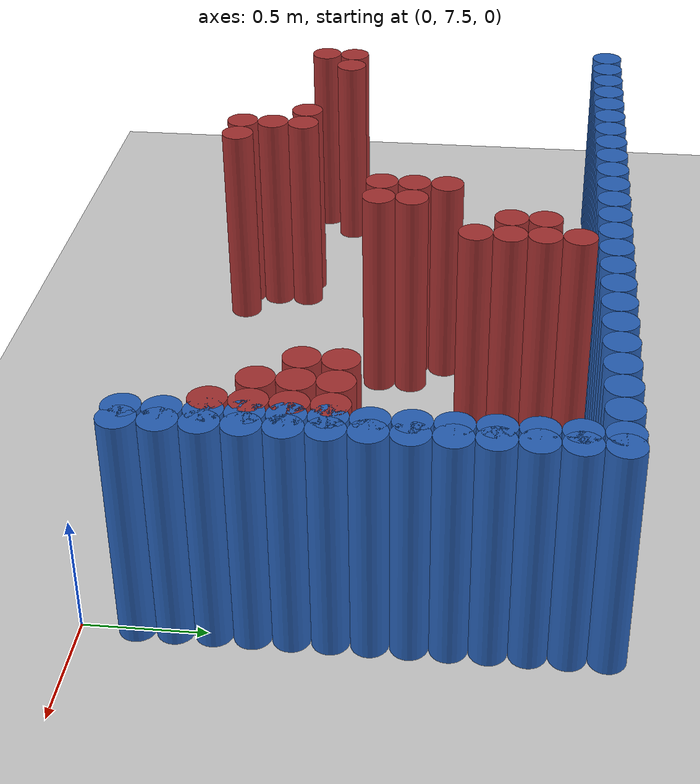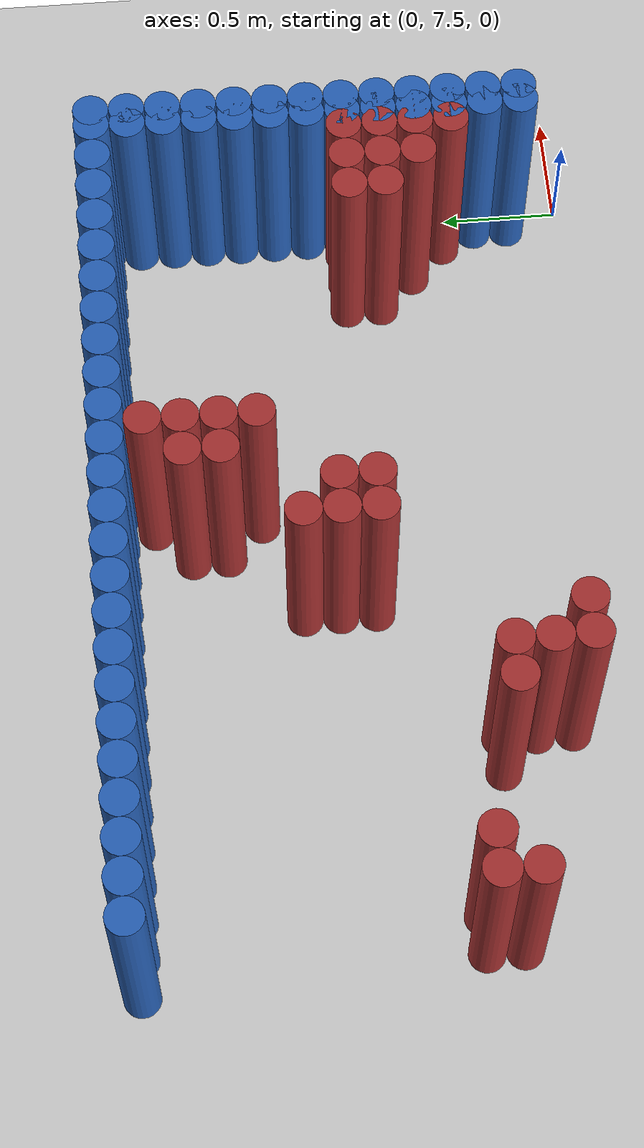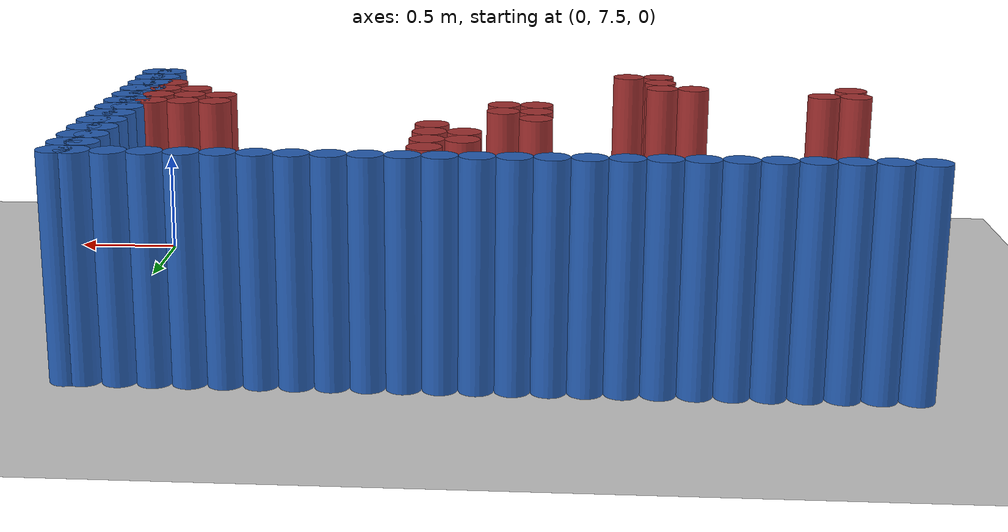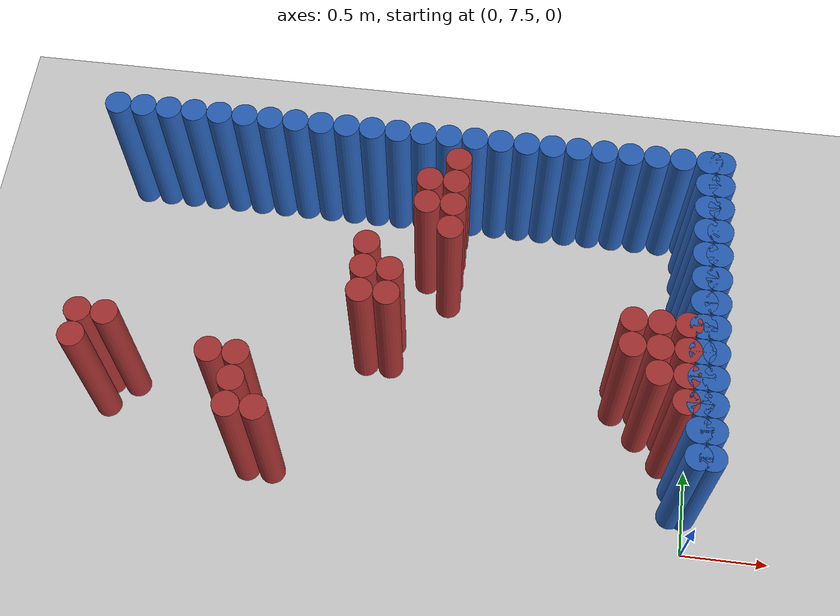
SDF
<sdf version="1.6">
 <world name="barn_world">
  <model name="ground_plane">
   <static>1</static>
   <link name="link">
    <collision name="collision">
     <geometry><plane><normal>0 0 1</normal><size>100 100</size></plane></geometry>
    </collision>
    <visual name="visual">
     <geometry><plane><normal>0 0 1</normal><size>100 100</size></plane></geometry>
     <material>
      <script><uri>file://media/materials/scripts/gazebo.material</uri><name>Gazebo/Grey</name></script>
     </material>
    </visual>
   </link>
  </model>
  <model name="unit_cylinder_192">
   <static>1</static>
   <pose>-3.4500 8.0250 0.5 0 0 0</pose>
   <link name="link">
    <collision name="collision">
     <geometry><cylinder><radius>0.075</radius><length>1</length></cylinder></geometry>
    </collision>
    <visual name="visual">
     <geometry><cylinder><radius>0.075</radius><length>1</length></cylinder></geometry>
     <material><ambient>0.648 0.192 0.192 1</ambient><diffuse>0.648 0.192 0.192 1</diffuse></material>
    </visual>
   </link>
  </model>
  <model name="unit_cylinder_193">
   <static>1</static>
   <pose>-3.4500 8.1750 0.5 0 0 0</pose>
   <link name="link">
    <collision name="collision">
     <geometry><cylinder><radius>0.075</radius><length>1</length></cylinder></geometry>
    </collision>
    <visual name="visual">
     <geometry><cylinder><radius>0.075</radius><length>1</length></cylinder></geometry>
     <material><ambient>0.648 0.192 0.192 1</ambient><diffuse>0.648 0.192 0.192 1</diffuse></material>
    </visual>
   </link>
  </model>
  <model name="unit_cylinder_199">
   <static>1</static>
   <pose>-3.3000 8.1750 0.5 0 0 0</pose>
   <link name="link">
    <collision name="collision">
     <geometry><cylinder><radius>0.075</radius><length>1</length></cylinder></geometry>
    </collision>
    <visual name="visual">
     <geometry><cylinder><radius>0.075</radius><length>1</length></cylinder></geometry>
     <material><ambient>0.648 0.192 0.192 1</ambient><diffuse>0.648 0.192 0.192 1</diffuse></material>
    </visual>
   </link>
  </model>
  <model name="unit_cylinder_214">
   <static>1</static>
   <pose>-2.7000 8.0250 0.5 0 0 0</pose>
   <link name="link">
    <collision name="collision">
     <geometry><cylinder><radius>0.075</radius><length>1</length></cylinder></geometry>
    </collision>
    <visual name="visual">
     <geometry><cylinder><radius>0.075</radius><length>1</length></cylinder></geometry>
     <material><ambient>0.648 0.192 0.192 1</ambient><diffuse>0.648 0.192 0.192 1</diffuse></material>
    </visual>
   </link>
  </model>
  <model name="unit_cylinder_216">
   <static>1</static>
   <pose>-2.5500 7.7250 0.5 0 0 0</pose>
   <link name="link">
    <collision name="collision">
     <geometry><cylinder><radius>0.075</radius><length>1</length></cylinder></geometry>
    </collision>
    <visual name="visual">
     <geometry><cylinder><radius>0.075</radius><length>1</length></cylinder></geometry>
     <material><ambient>0.648 0.192 0.192 1</ambient><diffuse>0.648 0.192 0.192 1</diffuse></material>
    </visual>
   </link>
  </model>
  <model name="unit_cylinder_217">
   <static>1</static>
   <pose>-2.5500 7.8750 0.5 0 0 0</pose>
   <link name="link">
    <collision name="collision">
     <geometry><cylinder><radius>0.075</radius><length>1</length></cylinder></geometry>
    </collision>
    <visual name="visual">
     <geometry><cylinder><radius>0.075</radius><length>1</length></cylinder></geometry>
     <material><ambient>0.648 0.192 0.192 1</ambient><diffuse>0.648 0.192 0.192 1</diffuse></material>
    </visual>
   </link>
  </model>
  <model name="unit_cylinder_218">
   <static>1</static>
   <pose>-2.5500 8.0250 0.5 0 0 0</pose>
   <link name="link">
    <collision name="collision">
     <geometry><cylinder><radius>0.075</radius><length>1</length></cylinder></geometry>
    </collision>
    <visual name="visual">
     <geometry><cylinder><radius>0.075</radius><length>1</length></cylinder></geometry>
     <material><ambient>0.648 0.192 0.192 1</ambient><diffuse>0.648 0.192 0.192 1</diffuse></material>
    </visual>
   </link>
  </model>
  <model name="unit_cylinder_221">
   <static>1</static>
   <pose>-2.4000 7.7250 0.5 0 0 0</pose>
   <link name="link">
    <collision name="collision">
     <geometry><cylinder><radius>0.075</radius><length>1</length></cylinder></geometry>
    </collision>
    <visual name="visual">
     <geometry><cylinder><radius>0.075</radius><length>1</length></cylinder></geometry>
     <material><ambient>0.648 0.192 0.192 1</ambient><diffuse>0.648 0.192 0.192 1</diffuse></material>
    </visual>
   </link>
  </model>
  <model name="unit_cylinder_229">
   <static>1</static>
   <pose>-1.9500 8.4750 0.5 0 0 0</pose>
   <link name="link">
    <collision name="collision">
     <geometry><cylinder><radius>0.075</radius><length>1</length></cylinder></geometry>
    </collision>
    <visual name="visual">
     <geometry><cylinder><radius>0.075</radius><length>1</length></cylinder></geometry>
     <material><ambient>0.648 0.192 0.192 1</ambient><diffuse>0.648 0.192 0.192 1</diffuse></material>
    </visual>
   </link>
  </model>
  <model name="unit_cylinder_230">
   <static>1</static>
   <pose>-1.9500 8.6250 0.5 0 0 0</pose>
   <link name="link">
    <collision name="collision">
     <geometry><cylinder><radius>0.075</radius><length>1</length></cylinder></geometry>
    </collision>
    <visual name="visual">
     <geometry><cylinder><radius>0.075</radius><length>1</length></cylinder></geometry>
     <material><ambient>0.648 0.192 0.192 1</ambient><diffuse>0.648 0.192 0.192 1</diffuse></material>
    </visual>
   </link>
  </model>
  <model name="unit_cylinder_231">
   <static>1</static>
   <pose>-1.9500 8.7750 0.5 0 0 0</pose>
   <link name="link">
    <collision name="collision">
     <geometry><cylinder><radius>0.075</radius><length>1</length></cylinder></geometry>
    </collision>
    <visual name="visual">
     <geometry><cylinder><radius>0.075</radius><length>1</length></cylinder></geometry>
     <material><ambient>0.648 0.192 0.192 1</ambient><diffuse>0.648 0.192 0.192 1</diffuse></material>
    </visual>
   </link>
  </model>
  <model name="unit_cylinder_234">
   <static>1</static>
   <pose>-1.8000 8.4750 0.5 0 0 0</pose>
   <link name="link">
    <collision name="collision">
     <geometry><cylinder><radius>0.075</radius><length>1</length></cylinder></geometry>
    </collision>
    <visual name="visual">
     <geometry><cylinder><radius>0.075</radius><length>1</length></cylinder></geometry>
     <material><ambient>0.648 0.192 0.192 1</ambient><diffuse>0.648 0.192 0.192 1</diffuse></material>
    </visual>
   </link>
  </model>
  <model name="unit_cylinder_235">
   <static>1</static>
   <pose>-1.8000 8.6250 0.5 0 0 0</pose>
   <link name="link">
    <collision name="collision">
     <geometry><cylinder><radius>0.075</radius><length>1</length></cylinder></geometry>
    </collision>
    <visual name="visual">
     <geometry><cylinder><radius>0.075</radius><length>1</length></cylinder></geometry>
     <material><ambient>0.648 0.192 0.192 1</ambient><diffuse>0.648 0.192 0.192 1</diffuse></material>
    </visual>
   </link>
  </model>
  <model name="unit_cylinder_238">
   <static>1</static>
   <pose>-1.6500 9.0750 0.5 0 0 0</pose>
   <link name="link">
    <collision name="collision">
     <geometry><cylinder><radius>0.075</radius><length>1</length></cylinder></geometry>
    </collision>
    <visual name="visual">
     <geometry><cylinder><radius>0.075</radius><length>1</length></cylinder></geometry>
     <material><ambient>0.648 0.192 0.192 1</ambient><diffuse>0.648 0.192 0.192 1</diffuse></material>
    </visual>
   </link>
  </model>
  <model name="unit_cylinder_239">
   <static>1</static>
   <pose>-1.6500 9.2250 0.5 0 0 0</pose>
   <link name="link">
    <collision name="collision">
     <geometry><cylinder><radius>0.075</radius><length>1</length></cylinder></geometry>
    </collision>
    <visual name="visual">
     <geometry><cylinder><radius>0.075</radius><length>1</length></cylinder></geometry>
     <material><ambient>0.648 0.192 0.192 1</ambient><diffuse>0.648 0.192 0.192 1</diffuse></material>
    </visual>
   </link>
  </model>
  <model name="unit_cylinder_242">
   <static>1</static>
   <pose>-1.5000 8.9250 0.5 0 0 0</pose>
   <link name="link">
    <collision name="collision">
     <geometry><cylinder><radius>0.075</radius><length>1</length></cylinder></geometry>
    </collision>
    <visual name="visual">
     <geometry><cylinder><radius>0.075</radius><length>1</length></cylinder></geometry>
     <material><ambient>0.648 0.192 0.192 1</ambient><diffuse>0.648 0.192 0.192 1</diffuse></material>
    </visual>
   </link>
  </model>
  <model name="unit_cylinder_243">
   <static>1</static>
   <pose>-1.5000 9.0750 0.5 0 0 0</pose>
   <link name="link">
    <collision name="collision">
     <geometry><cylinder><radius>0.075</radius><length>1</length></cylinder></geometry>
    </collision>
    <visual name="visual">
     <geometry><cylinder><radius>0.075</radius><length>1</length></cylinder></geometry>
     <material><ambient>0.648 0.192 0.192 1</ambient><diffuse>0.648 0.192 0.192 1</diffuse></material>
    </visual>
   </link>
  </model>
  <model name="unit_cylinder_244">
   <static>1</static>
   <pose>-1.5000 9.2250 0.5 0 0 0</pose>
   <link name="link">
    <collision name="collision">
     <geometry><cylinder><radius>0.075</radius><length>1</length></cylinder></geometry>
    </collision>
    <visual name="visual">
     <geometry><cylinder><radius>0.075</radius><length>1</length></cylinder></geometry>
     <material><ambient>0.648 0.192 0.192 1</ambient><diffuse>0.648 0.192 0.192 1</diffuse></material>
    </visual>
   </link>
  </model>
  <model name="unit_cylinder_245">
   <static>1</static>
   <pose>-1.5000 9.3750 0.5 0 0 0</pose>
   <link name="link">
    <collision name="collision">
     <geometry><cylinder><radius>0.075</radius><length>1</length></cylinder></geometry>
    </collision>
    <visual name="visual">
     <geometry><cylinder><radius>0.075</radius><length>1</length></cylinder></geometry>
     <material><ambient>0.648 0.192 0.192 1</ambient><diffuse>0.648 0.192 0.192 1</diffuse></material>
    </visual>
   </link>
  </model>
  <model name="unit_cylinder_254">
   <static>1</static>
   <pose>-0.4500 8.3250 0.5 0 0 0</pose>
   <link name="link">
    <collision name="collision">
     <geometry><cylinder><radius>0.075</radius><length>1</length></cylinder></geometry>
    </collision>
    <visual name="visual">
     <geometry><cylinder><radius>0.075</radius><length>1</length></cylinder></geometry>
     <material><ambient>0.648 0.192 0.192 1</ambient><diffuse>0.648 0.192 0.192 1</diffuse></material>
    </visual>
   </link>
  </model>
  <model name="unit_cylinder_255">
   <static>1</static>
   <pose>-0.4500 8.4750 0.5 0 0 0</pose>
   <link name="link">
    <collision name="collision">
     <geometry><cylinder><radius>0.075</radius><length>1</length></cylinder></geometry>
    </collision>
    <visual name="visual">
     <geometry><cylinder><radius>0.075</radius><length>1</length></cylinder></geometry>
     <material><ambient>0.648 0.192 0.192 1</ambient><diffuse>0.648 0.192 0.192 1</diffuse></material>
    </visual>
   </link>
  </model>
  <model name="unit_cylinder_257">
   <static>1</static>
   <pose>-0.3000 8.1750 0.5 0 0 0</pose>
   <link name="link">
    <collision name="collision">
     <geometry><cylinder><radius>0.075</radius><length>1</length></cylinder></geometry>
    </collision>
    <visual name="visual">
     <geometry><cylinder><radius>0.075</radius><length>1</length></cylinder></geometry>
     <material><ambient>0.648 0.192 0.192 1</ambient><diffuse>0.648 0.192 0.192 1</diffuse></material>
    </visual>
   </link>
  </model>
  <model name="unit_cylinder_258">
   <static>1</static>
   <pose>-0.3000 8.3250 0.5 0 0 0</pose>
   <link name="link">
    <collision name="collision">
     <geometry><cylinder><radius>0.075</radius><length>1</length></cylinder></geometry>
    </collision>
    <visual name="visual">
     <geometry><cylinder><radius>0.075</radius><length>1</length></cylinder></geometry>
     <material><ambient>0.648 0.192 0.192 1</ambient><diffuse>0.648 0.192 0.192 1</diffuse></material>
    </visual>
   </link>
  </model>
  <model name="unit_cylinder_259">
   <static>1</static>
   <pose>-0.3000 8.4750 0.5 0 0 0</pose>
   <link name="link">
    <collision name="collision">
     <geometry><cylinder><radius>0.075</radius><length>1</length></cylinder></geometry>
    </collision>
    <visual name="visual">
     <geometry><cylinder><radius>0.075</radius><length>1</length></cylinder></geometry>
     <material><ambient>0.648 0.192 0.192 1</ambient><diffuse>0.648 0.192 0.192 1</diffuse></material>
    </visual>
   </link>
  </model>
  <model name="unit_cylinder_264">
   <static>1</static>
   <pose>-0.1500 8.0250 0.5 0 0 0</pose>
   <link name="link">
    <collision name="collision">
     <geometry><cylinder><radius>0.075</radius><length>1</length></cylinder></geometry>
    </collision>
    <visual name="visual">
     <geometry><cylinder><radius>0.075</radius><length>1</length></cylinder></geometry>
     <material><ambient>0.648 0.192 0.192 1</ambient><diffuse>0.648 0.192 0.192 1</diffuse></material>
    </visual>
   </link>
  </model>
  <model name="unit_cylinder_265">
   <static>1</static>
   <pose>-0.1500 8.1750 0.5 0 0 0</pose>
   <link name="link">
    <collision name="collision">
     <geometry><cylinder><radius>0.075</radius><length>1</length></cylinder></geometry>
    </collision>
    <visual name="visual">
     <geometry><cylinder><radius>0.075</radius><length>1</length></cylinder></geometry>
     <material><ambient>0.648 0.192 0.192 1</ambient><diffuse>0.648 0.192 0.192 1</diffuse></material>
    </visual>
   </link>
  </model>
  <model name="unit_cylinder_266">
   <static>1</static>
   <pose>-0.1500 8.3250 0.5 0 0 0</pose>
   <link name="link">
    <collision name="collision">
     <geometry><cylinder><radius>0.075</radius><length>1</length></cylinder></geometry>
    </collision>
    <visual name="visual">
     <geometry><cylinder><radius>0.075</radius><length>1</length></cylinder></geometry>
     <material><ambient>0.648 0.192 0.192 1</ambient><diffuse>0.648 0.192 0.192 1</diffuse></material>
    </visual>
   </link>
  </model>
  <model name="unit_cylinder_267">
   <static>1</static>
   <pose>-0.1500 8.4750 0.5 0 0 0</pose>
   <link name="link">
    <collision name="collision">
     <geometry><cylinder><radius>0.075</radius><length>1</length></cylinder></geometry>
    </collision>
    <visual name="visual">
     <geometry><cylinder><radius>0.075</radius><length>1</length></cylinder></geometry>
     <material><ambient>0.648 0.192 0.192 1</ambient><diffuse>0.648 0.192 0.192 1</diffuse></material>
    </visual>
   </link>
  </model>
  <model name="unit_cylinder_285">
   <static>1</static>
   <pose>0.0000 7.7250 0.5 0 0 0</pose>
   <link name="link">
    <collision name="collision">
     <geometry><cylinder><radius>0.075</radius><length>1</length></cylinder></geometry>
    </collision>
    <visual name="visual">
     <geometry><cylinder><radius>0.075</radius><length>1</length></cylinder></geometry>
     <material><ambient>0.152 0.379 0.72 1</ambient><diffuse>0.152 0.379 0.72 1</diffuse></material>
    </visual>
   </link>
  </model>
  <model name="unit_cylinder_286">
   <static>1</static>
   <pose>0.0000 7.8750 0.5 0 0 0</pose>
   <link name="link">
    <collision name="collision">
     <geometry><cylinder><radius>0.075</radius><length>1</length></cylinder></geometry>
    </collision>
    <visual name="visual">
     <geometry><cylinder><radius>0.075</radius><length>1</length></cylinder></geometry>
     <material><ambient>0.152 0.379 0.72 1</ambient><diffuse>0.152 0.379 0.72 1</diffuse></material>
    </visual>
   </link>
  </model>
  <model name="unit_cylinder_287">
   <static>1</static>
   <pose>0.0000 8.0250 0.5 0 0 0</pose>
   <link name="link">
    <collision name="collision">
     <geometry><cylinder><radius>0.075</radius><length>1</length></cylinder></geometry>
    </collision>
    <visual name="visual">
     <geometry><cylinder><radius>0.075</radius><length>1</length></cylinder></geometry>
     <material><ambient>0.152 0.379 0.72 1</ambient><diffuse>0.152 0.379 0.72 1</diffuse></material>
    </visual>
   </link>
  </model>
  <model name="unit_cylinder_288">
   <static>1</static>
   <pose>0.0000 8.1750 0.5 0 0 0</pose>
   <link name="link">
    <collision name="collision">
     <geometry><cylinder><radius>0.075</radius><length>1</length></cylinder></geometry>
    </collision>
    <visual name="visual">
     <geometry><cylinder><radius>0.075</radius><length>1</length></cylinder></geometry>
     <material><ambient>0.152 0.379 0.72 1</ambient><diffuse>0.152 0.379 0.72 1</diffuse></material>
    </visual>
   </link>
  </model>
  <model name="unit_cylinder_289">
   <static>1</static>
   <pose>0.0000 8.3250 0.5 0 0 0</pose>
   <link name="link">
    <collision name="collision">
     <geometry><cylinder><radius>0.075</radius><length>1</length></cylinder></geometry>
    </collision>
    <visual name="visual">
     <geometry><cylinder><radius>0.075</radius><length>1</length></cylinder></geometry>
     <material><ambient>0.152 0.379 0.72 1</ambient><diffuse>0.152 0.379 0.72 1</diffuse></material>
    </visual>
   </link>
  </model>
  <model name="unit_cylinder_290">
   <static>1</static>
   <pose>0.0000 8.4750 0.5 0 0 0</pose>
   <link name="link">
    <collision name="collision">
     <geometry><cylinder><radius>0.075</radius><length>1</length></cylinder></geometry>
    </collision>
    <visual name="visual">
     <geometry><cylinder><radius>0.075</radius><length>1</length></cylinder></geometry>
     <material><ambient>0.152 0.379 0.72 1</ambient><diffuse>0.152 0.379 0.72 1</diffuse></material>
    </visual>
   </link>
  </model>
  <model name="unit_cylinder_291">
   <static>1</static>
   <pose>0.0000 8.6250 0.5 0 0 0</pose>
   <link name="link">
    <collision name="collision">
     <geometry><cylinder><radius>0.075</radius><length>1</length></cylinder></geometry>
    </collision>
    <visual name="visual">
     <geometry><cylinder><radius>0.075</radius><length>1</length></cylinder></geometry>
     <material><ambient>0.152 0.379 0.72 1</ambient><diffuse>0.152 0.379 0.72 1</diffuse></material>
    </visual>
   </link>
  </model>
  <model name="unit_cylinder_292">
   <static>1</static>
   <pose>0.0000 8.7750 0.5 0 0 0</pose>
   <link name="link">
    <collision name="collision">
     <geometry><cylinder><radius>0.075</radius><length>1</length></cylinder></geometry>
    </collision>
    <visual name="visual">
     <geometry><cylinder><radius>0.075</radius><length>1</length></cylinder></geometry>
     <material><ambient>0.152 0.379 0.72 1</ambient><diffuse>0.152 0.379 0.72 1</diffuse></material>
    </visual>
   </link>
  </model>
  <model name="unit_cylinder_293">
   <static>1</static>
   <pose>0.0000 8.9250 0.5 0 0 0</pose>
   <link name="link">
    <collision name="collision">
     <geometry><cylinder><radius>0.075</radius><length>1</length></cylinder></geometry>
    </collision>
    <visual name="visual">
     <geometry><cylinder><radius>0.075</radius><length>1</length></cylinder></geometry>
     <material><ambient>0.152 0.379 0.72 1</ambient><diffuse>0.152 0.379 0.72 1</diffuse></material>
    </visual>
   </link>
  </model>
  <model name="unit_cylinder_294">
   <static>1</static>
   <pose>0.0000 9.0750 0.5 0 0 0</pose>
   <link name="link">
    <collision name="collision">
     <geometry><cylinder><radius>0.075</radius><length>1</length></cylinder></geometry>
    </collision>
    <visual name="visual">
     <geometry><cylinder><radius>0.075</radius><length>1</length></cylinder></geometry>
     <material><ambient>0.152 0.379 0.72 1</ambient><diffuse>0.152 0.379 0.72 1</diffuse></material>
    </visual>
   </link>
  </model>
  <model name="unit_cylinder_295">
   <static>1</static>
   <pose>0.0000 9.2250 0.5 0 0 0</pose>
   <link name="link">
    <collision name="collision">
     <geometry><cylinder><radius>0.075</radius><length>1</length></cylinder></geometry>
    </collision>
    <visual name="visual">
     <geometry><cylinder><radius>0.075</radius><length>1</length></cylinder></geometry>
     <material><ambient>0.152 0.379 0.72 1</ambient><diffuse>0.152 0.379 0.72 1</diffuse></material>
    </visual>
   </link>
  </model>
  <model name="unit_cylinder_296">
   <static>1</static>
   <pose>0.0000 9.3750 0.5 0 0 0</pose>
   <link name="link">
    <collision name="collision">
     <geometry><cylinder><radius>0.075</radius><length>1</length></cylinder></geometry>
    </collision>
    <visual name="visual">
     <geometry><cylinder><radius>0.075</radius><length>1</length></cylinder></geometry>
     <material><ambient>0.152 0.379 0.72 1</ambient><diffuse>0.152 0.379 0.72 1</diffuse></material>
    </visual>
   </link>
  </model>
  <model name="unit_cylinder_297">
   <static>1</static>
   <pose>0.0000 9.5250 0.5 0 0 0</pose>
   <link name="link">
    <collision name="collision">
     <geometry><cylinder><radius>0.075</radius><length>1</length></cylinder></geometry>
    </collision>
    <visual name="visual">
     <geometry><cylinder><radius>0.075</radius><length>1</length></cylinder></geometry>
     <material><ambient>0.152 0.379 0.72 1</ambient><diffuse>0.152 0.379 0.72 1</diffuse></material>
    </visual>
   </link>
  </model>
  <model name="unit_cylinder_298">
   <static>1</static>
   <pose>-0.0750 9.5250 0.5 0 0 0</pose>
   <link name="link">
    <collision name="collision">
     <geometry><cylinder><radius>0.075</radius><length>1</length></cylinder></geometry>
    </collision>
    <visual name="visual">
     <geometry><cylinder><radius>0.075</radius><length>1</length></cylinder></geometry>
     <material><ambient>0.152 0.379 0.72 1</ambient><diffuse>0.152 0.379 0.72 1</diffuse></material>
    </visual>
   </link>
  </model>
  <model name="unit_cylinder_299">
   <static>1</static>
   <pose>-0.2250 9.5250 0.5 0 0 0</pose>
   <link name="link">
    <collision name="collision">
     <geometry><cylinder><radius>0.075</radius><length>1</length></cylinder></geometry>
    </collision>
    <visual name="visual">
     <geometry><cylinder><radius>0.075</radius><length>1</length></cylinder></geometry>
     <material><ambient>0.152 0.379 0.72 1</ambient><diffuse>0.152 0.379 0.72 1</diffuse></material>
    </visual>
   </link>
  </model>
  <model name="unit_cylinder_300">
   <static>1</static>
   <pose>-0.3750 9.5250 0.5 0 0 0</pose>
   <link name="link">
    <collision name="collision">
     <geometry><cylinder><radius>0.075</radius><length>1</length></cylinder></geometry>
    </collision>
    <visual name="visual">
     <geometry><cylinder><radius>0.075</radius><length>1</length></cylinder></geometry>
     <material><ambient>0.152 0.379 0.72 1</ambient><diffuse>0.152 0.379 0.72 1</diffuse></material>
    </visual>
   </link>
  </model>
  <model name="unit_cylinder_301">
   <static>1</static>
   <pose>-0.5250 9.5250 0.5 0 0 0</pose>
   <link name="link">
    <collision name="collision">
     <geometry><cylinder><radius>0.075</radius><length>1</length></cylinder></geometry>
    </collision>
    <visual name="visual">
     <geometry><cylinder><radius>0.075</radius><length>1</length></cylinder></geometry>
     <material><ambient>0.152 0.379 0.72 1</ambient><diffuse>0.152 0.379 0.72 1</diffuse></material>
    </visual>
   </link>
  </model>
  <model name="unit_cylinder_302">
   <static>1</static>
   <pose>-0.6750 9.5250 0.5 0 0 0</pose>
   <link name="link">
    <collision name="collision">
     <geometry><cylinder><radius>0.075</radius><length>1</length></cylinder></geometry>
    </collision>
    <visual name="visual">
     <geometry><cylinder><radius>0.075</radius><length>1</length></cylinder></geometry>
     <material><ambient>0.152 0.379 0.72 1</ambient><diffuse>0.152 0.379 0.72 1</diffuse></material>
    </visual>
   </link>
  </model>
  <model name="unit_cylinder_303">
   <static>1</static>
   <pose>-0.8250 9.5250 0.5 0 0 0</pose>
   <link name="link">
    <collision name="collision">
     <geometry><cylinder><radius>0.075</radius><length>1</length></cylinder></geometry>
    </collision>
    <visual name="visual">
     <geometry><cylinder><radius>0.075</radius><length>1</length></cylinder></geometry>
     <material><ambient>0.152 0.379 0.72 1</ambient><diffuse>0.152 0.379 0.72 1</diffuse></material>
    </visual>
   </link>
  </model>
  <model name="unit_cylinder_304">
   <static>1</static>
   <pose>-0.9750 9.5250 0.5 0 0 0</pose>
   <link name="link">
    <collision name="collision">
     <geometry><cylinder><radius>0.075</radius><length>1</length></cylinder></geometry>
    </collision>
    <visual name="visual">
     <geometry><cylinder><radius>0.075</radius><length>1</length></cylinder></geometry>
     <material><ambient>0.152 0.379 0.72 1</ambient><diffuse>0.152 0.379 0.72 1</diffuse></material>
    </visual>
   </link>
  </model>
  <model name="unit_cylinder_305">
   <static>1</static>
   <pose>-1.1250 9.5250 0.5 0 0 0</pose>
   <link name="link">
    <collision name="collision">
     <geometry><cylinder><radius>0.075</radius><length>1</length></cylinder></geometry>
    </collision>
    <visual name="visual">
     <geometry><cylinder><radius>0.075</radius><length>1</length></cylinder></geometry>
     <material><ambient>0.152 0.379 0.72 1</ambient><diffuse>0.152 0.379 0.72 1</diffuse></material>
    </visual>
   </link>
  </model>
  <model name="unit_cylinder_306">
   <static>1</static>
   <pose>-1.2750 9.5250 0.5 0 0 0</pose>
   <link name="link">
    <collision name="collision">
     <geometry><cylinder><radius>0.075</radius><length>1</length></cylinder></geometry>
    </collision>
    <visual name="visual">
     <geometry><cylinder><radius>0.075</radius><length>1</length></cylinder></geometry>
     <material><ambient>0.152 0.379 0.72 1</ambient><diffuse>0.152 0.379 0.72 1</diffuse></material>
    </visual>
   </link>
  </model>
  <model name="unit_cylinder_307">
   <static>1</static>
   <pose>-1.4250 9.5250 0.5 0 0 0</pose>
   <link name="link">
    <collision name="collision">
     <geometry><cylinder><radius>0.075</radius><length>1</length></cylinder></geometry>
    </collision>
    <visual name="visual">
     <geometry><cylinder><radius>0.075</radius><length>1</length></cylinder></geometry>
     <material><ambient>0.152 0.379 0.72 1</ambient><diffuse>0.152 0.379 0.72 1</diffuse></material>
    </visual>
   </link>
  </model>
  <model name="unit_cylinder_308">
   <static>1</static>
   <pose>-1.5750 9.5250 0.5 0 0 0</pose>
   <link name="link">
    <collision name="collision">
     <geometry><cylinder><radius>0.075</radius><length>1</length></cylinder></geometry>
    </collision>
    <visual name="visual">
     <geometry><cylinder><radius>0.075</radius><length>1</length></cylinder></geometry>
     <material><ambient>0.152 0.379 0.72 1</ambient><diffuse>0.152 0.379 0.72 1</diffuse></material>
    </visual>
   </link>
  </model>
  <model name="unit_cylinder_309">
   <static>1</static>
   <pose>-1.7250 9.5250 0.5 0 0 0</pose>
   <link name="link">
    <collision name="collision">
     <geometry><cylinder><radius>0.075</radius><length>1</length></cylinder></geometry>
    </collision>
    <visual name="visual">
     <geometry><cylinder><radius>0.075</radius><length>1</length></cylinder></geometry>
     <material><ambient>0.152 0.379 0.72 1</ambient><diffuse>0.152 0.379 0.72 1</diffuse></material>
    </visual>
   </link>
  </model>
  <model name="unit_cylinder_310">
   <static>1</static>
   <pose>-1.8750 9.5250 0.5 0 0 0</pose>
   <link name="link">
    <collision name="collision">
     <geometry><cylinder><radius>0.075</radius><length>1</length></cylinder></geometry>
    </collision>
    <visual name="visual">
     <geometry><cylinder><radius>0.075</radius><length>1</length></cylinder></geometry>
     <material><ambient>0.152 0.379 0.72 1</ambient><diffuse>0.152 0.379 0.72 1</diffuse></material>
    </visual>
   </link>
  </model>
  <model name="unit_cylinder_311">
   <static>1</static>
   <pose>-2.0250 9.5250 0.5 0 0 0</pose>
   <link name="link">
    <collision name="collision">
     <geometry><cylinder><radius>0.075</radius><length>1</length></cylinder></geometry>
    </collision>
    <visual name="visual">
     <geometry><cylinder><radius>0.075</radius><length>1</length></cylinder></geometry>
     <material><ambient>0.152 0.379 0.72 1</ambient><diffuse>0.152 0.379 0.72 1</diffuse></material>
    </visual>
   </link>
  </model>
  <model name="unit_cylinder_312">
   <static>1</static>
   <pose>-2.1750 9.5250 0.5 0 0 0</pose>
   <link name="link">
    <collision name="collision">
     <geometry><cylinder><radius>0.075</radius><length>1</length></cylinder></geometry>
    </collision>
    <visual name="visual">
     <geometry><cylinder><radius>0.075</radius><length>1</length></cylinder></geometry>
     <material><ambient>0.152 0.379 0.72 1</ambient><diffuse>0.152 0.379 0.72 1</diffuse></material>
    </visual>
   </link>
  </model>
  <model name="unit_cylinder_313">
   <static>1</static>
   <pose>-2.3250 9.5250 0.5 0 0 0</pose>
   <link name="link">
    <collision name="collision">
     <geometry><cylinder><radius>0.075</radius><length>1</length></cylinder></geometry>
    </collision>
    <visual name="visual">
     <geometry><cylinder><radius>0.075</radius><length>1</length></cylinder></geometry>
     <material><ambient>0.152 0.379 0.72 1</ambient><diffuse>0.152 0.379 0.72 1</diffuse></material>
    </visual>
   </link>
  </model>
  <model name="unit_cylinder_314">
   <static>1</static>
   <pose>-2.4750 9.5250 0.5 0 0 0</pose>
   <link name="link">
    <collision name="collision">
     <geometry><cylinder><radius>0.075</radius><length>1</length></cylinder></geometry>
    </collision>
    <visual name="visual">
     <geometry><cylinder><radius>0.075</radius><length>1</length></cylinder></geometry>
     <material><ambient>0.152 0.379 0.72 1</ambient><diffuse>0.152 0.379 0.72 1</diffuse></material>
    </visual>
   </link>
  </model>
  <model name="unit_cylinder_315">
   <static>1</static>
   <pose>-2.6250 9.5250 0.5 0 0 0</pose>
   <link name="link">
    <collision name="collision">
     <geometry><cylinder><radius>0.075</radius><length>1</length></cylinder></geometry>
    </collision>
    <visual name="visual">
     <geometry><cylinder><radius>0.075</radius><length>1</length></cylinder></geometry>
     <material><ambient>0.152 0.379 0.72 1</ambient><diffuse>0.152 0.379 0.72 1</diffuse></material>
    </visual>
   </link>
  </model>
  <model name="unit_cylinder_316">
   <static>1</static>
   <pose>-2.7750 9.5250 0.5 0 0 0</pose>
   <link name="link">
    <collision name="collision">
     <geometry><cylinder><radius>0.075</radius><length>1</length></cylinder></geometry>
    </collision>
    <visual name="visual">
     <geometry><cylinder><radius>0.075</radius><length>1</length></cylinder></geometry>
     <material><ambient>0.152 0.379 0.72 1</ambient><diffuse>0.152 0.379 0.72 1</diffuse></material>
    </visual>
   </link>
  </model>
  <model name="unit_cylinder_317">
   <static>1</static>
   <pose>-2.9250 9.5250 0.5 0 0 0</pose>
   <link name="link">
    <collision name="collision">
     <geometry><cylinder><radius>0.075</radius><length>1</length></cylinder></geometry>
    </collision>
    <visual name="visual">
     <geometry><cylinder><radius>0.075</radius><length>1</length></cylinder></geometry>
     <material><ambient>0.152 0.379 0.72 1</ambient><diffuse>0.152 0.379 0.72 1</diffuse></material>
    </visual>
   </link>
  </model>
  <model name="unit_cylinder_318">
   <static>1</static>
   <pose>-3.0750 9.5250 0.5 0 0 0</pose>
   <link name="link">
    <collision name="collision">
     <geometry><cylinder><radius>0.075</radius><length>1</length></cylinder></geometry>
    </collision>
    <visual name="visual">
     <geometry><cylinder><radius>0.075</radius><length>1</length></cylinder></geometry>
     <material><ambient>0.152 0.379 0.72 1</ambient><diffuse>0.152 0.379 0.72 1</diffuse></material>
    </visual>
   </link>
  </model>
  <model name="unit_cylinder_319">
   <static>1</static>
   <pose>-3.2250 9.5250 0.5 0 0 0</pose>
   <link name="link">
    <collision name="collision">
     <geometry><cylinder><radius>0.075</radius><length>1</length></cylinder></geometry>
    </collision>
    <visual name="visual">
     <geometry><cylinder><radius>0.075</radius><length>1</length></cylinder></geometry>
     <material><ambient>0.152 0.379 0.72 1</ambient><diffuse>0.152 0.379 0.72 1</diffuse></material>
    </visual>
   </link>
  </model>
  <model name="unit_cylinder_320">
   <static>1</static>
   <pose>-3.3750 9.5250 0.5 0 0 0</pose>
   <link name="link">
    <collision name="collision">
     <geometry><cylinder><radius>0.075</radius><length>1</length></cylinder></geometry>
    </collision>
    <visual name="visual">
     <geometry><cylinder><radius>0.075</radius><length>1</length></cylinder></geometry>
     <material><ambient>0.152 0.379 0.72 1</ambient><diffuse>0.152 0.379 0.72 1</diffuse></material>
    </visual>
   </link>
  </model>
  <model name="unit_cylinder_321">
   <static>1</static>
   <pose>-3.5250 9.5250 0.5 0 0 0</pose>
   <link name="link">
    <collision name="collision">
     <geometry><cylinder><radius>0.075</radius><length>1</length></cylinder></geometry>
    </collision>
    <visual name="visual">
     <geometry><cylinder><radius>0.075</radius><length>1</length></cylinder></geometry>
     <material><ambient>0.152 0.379 0.72 1</ambient><diffuse>0.152 0.379 0.72 1</diffuse></material>
    </visual>
   </link>
  </model>
  <model name="unit_cylinder_362">
   <static>1</static>
   <pose>-0.0750 7.7250 0.5 0 0 0</pose>
   <link name="link">
    <collision name="collision">
     <geometry><cylinder><radius>0.075</radius><length>1</length></cylinder></geometry>
    </collision>
    <visual name="visual">
     <geometry><cylinder><radius>0.075</radius><length>1</length></cylinder></geometry>
     <material><ambient>0.152 0.379 0.72 1</ambient><diffuse>0.152 0.379 0.72 1</diffuse></material>
    </visual>
   </link>
  </model>
  <model name="unit_cylinder_364">
   <static>1</static>
   <pose>-0.0750 7.8750 0.5 0 0 0</pose>
   <link name="link">
    <collision name="collision">
     <geometry><cylinder><radius>0.075</radius><length>1</length></cylinder></geometry>
    </collision>
    <visual name="visual">
     <geometry><cylinder><radius>0.075</radius><length>1</length></cylinder></geometry>
     <material><ambient>0.152 0.379 0.72 1</ambient><diffuse>0.152 0.379 0.72 1</diffuse></material>
    </visual>
   </link>
  </model>
  <model name="unit_cylinder_366">
   <static>1</static>
   <pose>-0.0750 8.0250 0.5 0 0 0</pose>
   <link name="link">
    <collision name="collision">
     <geometry><cylinder><radius>0.075</radius><length>1</length></cylinder></geometry>
    </collision>
    <visual name="visual">
     <geometry><cylinder><radius>0.075</radius><length>1</length></cylinder></geometry>
     <material><ambient>0.152 0.379 0.72 1</ambient><diffuse>0.152 0.379 0.72 1</diffuse></material>
    </visual>
   </link>
  </model>
  <model name="unit_cylinder_368">
   <static>1</static>
   <pose>-0.0750 8.1750 0.5 0 0 0</pose>
   <link name="link">
    <collision name="collision">
     <geometry><cylinder><radius>0.075</radius><length>1</length></cylinder></geometry>
    </collision>
    <visual name="visual">
     <geometry><cylinder><radius>0.075</radius><length>1</length></cylinder></geometry>
     <material><ambient>0.152 0.379 0.72 1</ambient><diffuse>0.152 0.379 0.72 1</diffuse></material>
    </visual>
   </link>
  </model>
  <model name="unit_cylinder_370">
   <static>1</static>
   <pose>-0.0750 8.3250 0.5 0 0 0</pose>
   <link name="link">
    <collision name="collision">
     <geometry><cylinder><radius>0.075</radius><length>1</length></cylinder></geometry>
    </collision>
    <visual name="visual">
     <geometry><cylinder><radius>0.075</radius><length>1</length></cylinder></geometry>
     <material><ambient>0.152 0.379 0.72 1</ambient><diffuse>0.152 0.379 0.72 1</diffuse></material>
    </visual>
   </link>
  </model>
  <model name="unit_cylinder_372">
   <static>1</static>
   <pose>-0.0750 8.4750 0.5 0 0 0</pose>
   <link name="link">
    <collision name="collision">
     <geometry><cylinder><radius>0.075</radius><length>1</length></cylinder></geometry>
    </collision>
    <visual name="visual">
     <geometry><cylinder><radius>0.075</radius><length>1</length></cylinder></geometry>
     <material><ambient>0.152 0.379 0.72 1</ambient><diffuse>0.152 0.379 0.72 1</diffuse></material>
    </visual>
   </link>
  </model>
  <model name="unit_cylinder_374">
   <static>1</static>
   <pose>-0.0750 8.6250 0.5 0 0 0</pose>
   <link name="link">
    <collision name="collision">
     <geometry><cylinder><radius>0.075</radius><length>1</length></cylinder></geometry>
    </collision>
    <visual name="visual">
     <geometry><cylinder><radius>0.075</radius><length>1</length></cylinder></geometry>
     <material><ambient>0.152 0.379 0.72 1</ambient><diffuse>0.152 0.379 0.72 1</diffuse></material>
    </visual>
   </link>
  </model>
  <model name="unit_cylinder_376">
   <static>1</static>
   <pose>-0.0750 8.7750 0.5 0 0 0</pose>
   <link name="link">
    <collision name="collision">
     <geometry><cylinder><radius>0.075</radius><length>1</length></cylinder></geometry>
    </collision>
    <visual name="visual">
     <geometry><cylinder><radius>0.075</radius><length>1</length></cylinder></geometry>
     <material><ambient>0.152 0.379 0.72 1</ambient><diffuse>0.152 0.379 0.72 1</diffuse></material>
    </visual>
   </link>
  </model>
  <model name="unit_cylinder_378">
   <static>1</static>
   <pose>-0.0750 8.9250 0.5 0 0 0</pose>
   <link name="link">
    <collision name="collision">
     <geometry><cylinder><radius>0.075</radius><length>1</length></cylinder></geometry>
    </collision>
    <visual name="visual">
     <geometry><cylinder><radius>0.075</radius><length>1</length></cylinder></geometry>
     <material><ambient>0.152 0.379 0.72 1</ambient><diffuse>0.152 0.379 0.72 1</diffuse></material>
    </visual>
   </link>
  </model>
  <model name="unit_cylinder_380">
   <static>1</static>
   <pose>-0.0750 9.0750 0.5 0 0 0</pose>
   <link name="link">
    <collision name="collision">
     <geometry><cylinder><radius>0.075</radius><length>1</length></cylinder></geometry>
    </collision>
    <visual name="visual">
     <geometry><cylinder><radius>0.075</radius><length>1</length></cylinder></geometry>
     <material><ambient>0.152 0.379 0.72 1</ambient><diffuse>0.152 0.379 0.72 1</diffuse></material>
    </visual>
   </link>
  </model>
  <model name="unit_cylinder_382">
   <static>1</static>
   <pose>-0.0750 9.2250 0.5 0 0 0</pose>
   <link name="link">
    <collision name="collision">
     <geometry><cylinder><radius>0.075</radius><length>1</length></cylinder></geometry>
    </collision>
    <visual name="visual">
     <geometry><cylinder><radius>0.075</radius><length>1</length></cylinder></geometry>
     <material><ambient>0.152 0.379 0.72 1</ambient><diffuse>0.152 0.379 0.72 1</diffuse></material>
    </visual>
   </link>
  </model>
  <model name="unit_cylinder_384">
   <static>1</static>
   <pose>-0.0750 9.3750 0.5 0 0 0</pose>
   <link name="link">
    <collision name="collision">
     <geometry><cylinder><radius>0.075</radius><length>1</length></cylinder></geometry>
    </collision>
    <visual name="visual">
     <geometry><cylinder><radius>0.075</radius><length>1</length></cylinder></geometry>
     <material><ambient>0.152 0.379 0.72 1</ambient><diffuse>0.152 0.379 0.72 1</diffuse></material>
    </visual>
   </link>
  </model>
 </world>
</sdf>
